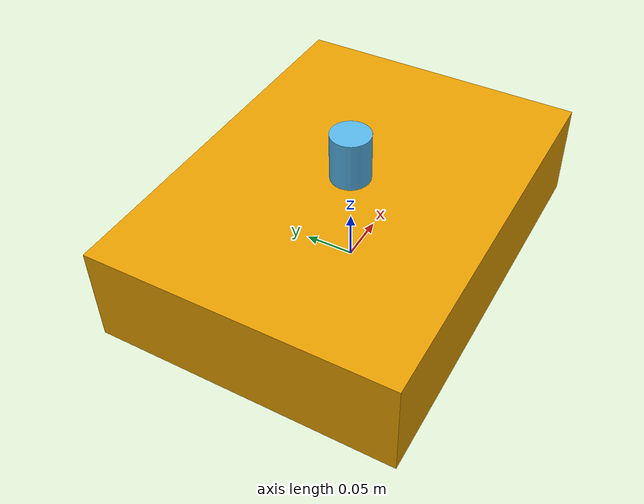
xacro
<?xml version="1.0"?>
<robot xmlns:xacro="http://ros.org/wiki/xacro" name="simple_bot">

  <!-- Properties -->
  <xacro:property name="wheel_radius" value="0.05"/>
  <xacro:property name="wheel_separation" value="0.3"/>

  <!-- Base link -->
  <link name="base_link">
    <inertial>
      <mass value="1.0"/>
      <origin xyz="0 0 0.05"/>
      <inertia ixx="0.01" iyy="0.01" izz="0.01" ixy="0.0" ixz="0.0" iyz="0.0"/>
    </inertial>
    <visual>
      <geometry>
        <box size="0.4 0.3 0.1"/>
      </geometry>
      <origin xyz="0 0 0.05"/>
    </visual>
    <collision>
      <geometry>
        <box size="0.4 0.3 0.1"/>
      </geometry>
      <origin xyz="0 0 0.05"/>
    </collision>
  </link>

  <!-- Laser link -->
  <link name="laser">
    <inertial>
      <mass value="0.1"/>
      <origin xyz="0 0 0.05"/>
      <inertia ixx="0.001" iyy="0.001" izz="0.001" ixy="0.0" ixz="0.0" iyz="0.0"/>
    </inertial>
    <visual>
      <geometry>
        <cylinder radius="0.02" length="0.1"/>
      </geometry>
      <origin xyz="0 0 0.1"/>
    </visual>
    <collision>
      <geometry>
        <cylinder radius="0.02" length="0.1"/>
      </geometry>
      <origin xyz="0 0 0.1"/>
    </collision>
  </link>

  <!-- Fixed joint for laser -->
  <joint name="laser_joint" type="fixed">
    <parent link="base_link"/>
    <child link="laser"/>
  </joint>

  <!-- Gazebo plugin: Differential drive -->
  <gazebo>
    <plugin name="diff_drive_controller" filename="libgazebo_ros_diff_drive.so">
      <ros>
        <remapping>cmd_vel:=cmd_vel</remapping>
        <remapping>odom:=odom</remapping>
      </ros>
      <update_rate>30.0</update_rate>
      <left_wheel>base_link</left_wheel>  <!-- Placeholder -->
      <right_wheel>base_link</right_wheel> <!-- Placeholder -->
      <wheel_separation>${wheel_separation}</wheel_separation>
      <wheel_diameter>${2 * wheel_radius}</wheel_diameter>
      <command_topic>cmd_vel</command_topic>
      <odometry_topic>odom</odometry_topic>
      <odometry_frame>odom</odometry_frame>
      <robot_base_frame>base_link</robot_base_frame>
    </plugin>
  </gazebo>

</robot>
